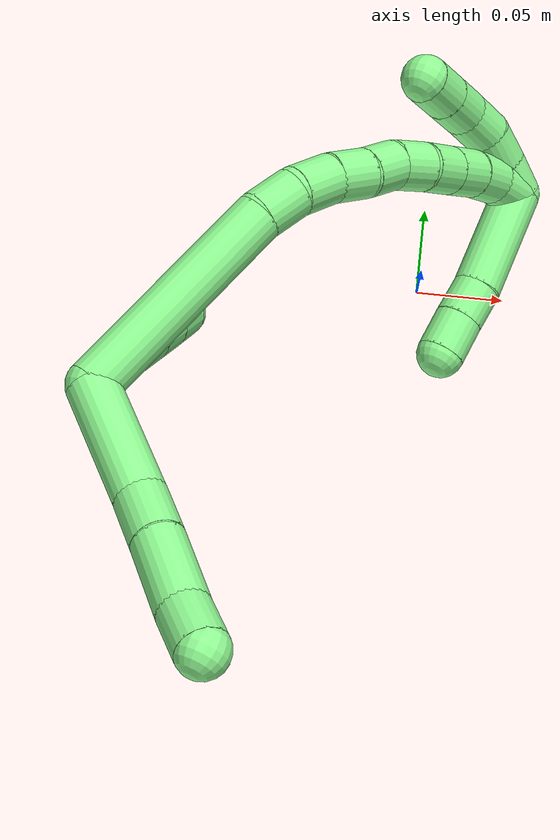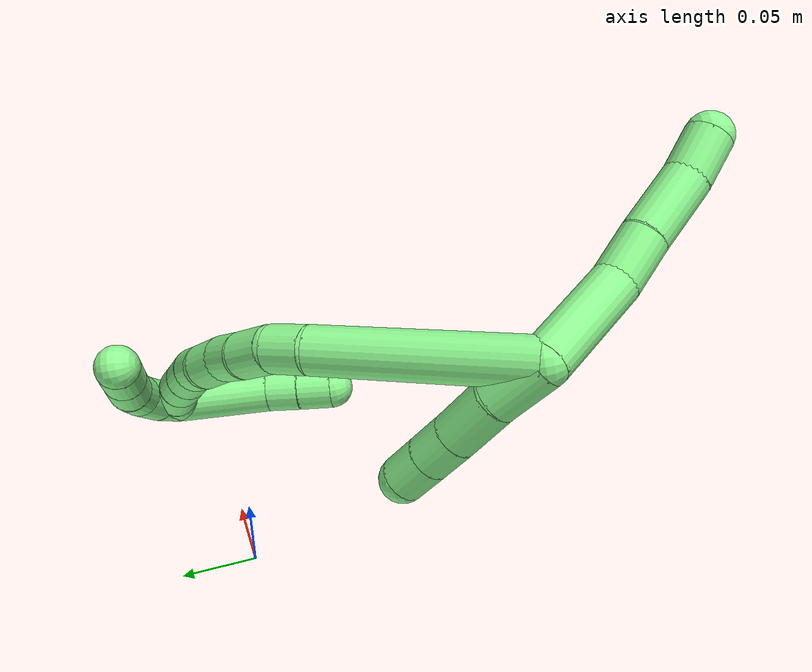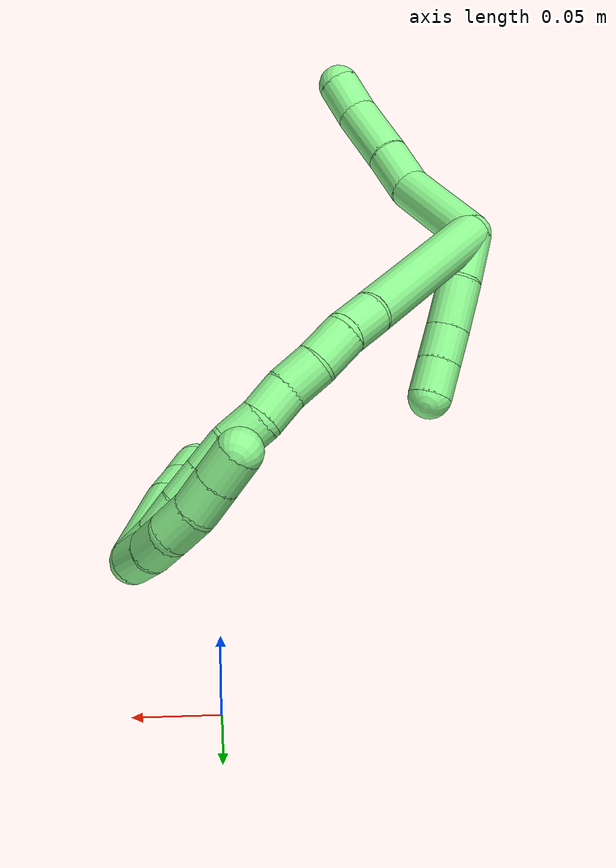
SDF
<sdf version="1.7">
 <world name="default">
  <model name="13">
   <static>0</static>
   <link name="13">
    <collision name="collision-cylinder-e_1_2_8">
     <pose>0.018288 0.013009 0.019645 -0.584907 0.660047 -0.205548</pose>
     <geometry><cylinder><radius>0.0125</radius><length>0.059653</length></cylinder></geometry>
     <surface>
      <friction><ode><mu>1.16</mu><mu2>1.16</mu2><slip1>0</slip1><slip2>0</slip2></ode></friction>
      <contact><ode><kp>1e+06</kp><kd>1</kd><max_vel>0</max_vel><min_depth>0.001</min_depth></ode></contact>
     </surface>
    </collision>
    <visual name="visual-cylinder-e_1_2_8">
     <pose>0.018288 0.013009 0.019645 -0.584907 0.660047 -0.205548</pose>
     <geometry><cylinder><radius>0.0125</radius><length>0.059653</length></cylinder></geometry>
     <material><ambient>0.564706 0.984314 0.572549 1</ambient></material>
    </visual>
    <collision name="collision-cylinder-e_2_8_9">
     <pose>0.041716 0.035107 0.048119 -0.799942 0.385343 -0.164581</pose>
     <geometry><cylinder><radius>0.0125</radius><length>0.027348</length></cylinder></geometry>
     <surface>
      <friction><ode><mu>1.16</mu><mu2>1.16</mu2><slip1>0</slip1><slip2>0</slip2></ode></friction>
      <contact><ode><kp>1e+06</kp><kd>1</kd><max_vel>0</max_vel><min_depth>0.001</min_depth></ode></contact>
     </surface>
    </collision>
    <visual name="visual-cylinder-e_2_8_9">
     <pose>0.041716 0.035107 0.048119 -0.799942 0.385343 -0.164581</pose>
     <geometry><cylinder><radius>0.0125</radius><length>0.027348</length></cylinder></geometry>
     <material><ambient>0.564706 0.984314 0.572549 1</ambient></material>
    </visual>
    <collision name="collision-cylinder-e_3_9_10">
     <pose>0.054881 0.055881 0.069779 -0.738622 0.433134 -0.169915</pose>
     <geometry><cylinder><radius>0.0125</radius><length>0.038241</length></cylinder></geometry>
     <surface>
      <friction><ode><mu>1.16</mu><mu2>1.16</mu2><slip1>0</slip1><slip2>0</slip2></ode></friction>
      <contact><ode><kp>1e+06</kp><kd>1</kd><max_vel>0</max_vel><min_depth>0.001</min_depth></ode></contact>
     </surface>
    </collision>
    <visual name="visual-cylinder-e_3_9_10">
     <pose>0.054881 0.055881 0.069779 -0.738622 0.433134 -0.169915</pose>
     <geometry><cylinder><radius>0.0125</radius><length>0.038241</length></cylinder></geometry>
     <material><ambient>0.564706 0.984314 0.572549 1</ambient></material>
    </visual>
    <collision name="collision-cylinder-e_4_10_6">
     <pose>0.066846 0.076706 0.089971 -0.892921 0.323926 -0.156115</pose>
     <geometry><cylinder><radius>0.0125</radius><length>0.024758</length></cylinder></geometry>
     <surface>
      <friction><ode><mu>1.16</mu><mu2>1.16</mu2><slip1>0</slip1><slip2>0</slip2></ode></friction>
      <contact><ode><kp>1e+06</kp><kd>1</kd><max_vel>0</max_vel><min_depth>0.001</min_depth></ode></contact>
     </surface>
    </collision>
    <visual name="visual-cylinder-e_4_10_6">
     <pose>0.066846 0.076706 0.089971 -0.892921 0.323926 -0.156115</pose>
     <geometry><cylinder><radius>0.0125</radius><length>0.024758</length></cylinder></geometry>
     <material><ambient>0.564706 0.984314 0.572549 1</ambient></material>
    </visual>
    <collision name="collision-cylinder-e_1_2_11">
     <pose>0.004418 -0.007477 -0.012273 2.59444 0.29828 0.983211</pose>
     <geometry><cylinder><radius>0.0125</radius><length>0.03007</length></cylinder></geometry>
     <surface>
      <friction><ode><mu>1.16</mu><mu2>1.16</mu2><slip1>0</slip1><slip2>0</slip2></ode></friction>
      <contact><ode><kp>1e+06</kp><kd>1</kd><max_vel>0</max_vel><min_depth>0.001</min_depth></ode></contact>
     </surface>
    </collision>
    <visual name="visual-cylinder-e_1_2_11">
     <pose>0.004418 -0.007477 -0.012273 2.59444 0.29828 0.983211</pose>
     <geometry><cylinder><radius>0.0125</radius><length>0.03007</length></cylinder></geometry>
     <material><ambient>0.564706 0.984314 0.572549 1</ambient></material>
    </visual>
    <collision name="collision-cylinder-e_2_11_12">
     <pose>0.014487 -0.023153 -0.035315 2.49087 0.395449 1.07179</pose>
     <geometry><cylinder><radius>0.0125</radius><length>0.029335</length></cylinder></geometry>
     <surface>
      <friction><ode><mu>1.16</mu><mu2>1.16</mu2><slip1>0</slip1><slip2>0</slip2></ode></friction>
      <contact><ode><kp>1e+06</kp><kd>1</kd><max_vel>0</max_vel><min_depth>0.001</min_depth></ode></contact>
     </surface>
    </collision>
    <visual name="visual-cylinder-e_2_11_12">
     <pose>0.014487 -0.023153 -0.035315 2.49087 0.395449 1.07179</pose>
     <geometry><cylinder><radius>0.0125</radius><length>0.029335</length></cylinder></geometry>
     <material><ambient>0.564706 0.984314 0.572549 1</ambient></material>
    </visual>
    <collision name="collision-cylinder-e_3_12_13">
     <pose>0.02404 -0.036752 -0.053646 2.52143 0.397639 1.12268</pose>
     <geometry><cylinder><radius>0.0125</radius><length>0.020155</length></cylinder></geometry>
     <surface>
      <friction><ode><mu>1.16</mu><mu2>1.16</mu2><slip1>0</slip1><slip2>0</slip2></ode></friction>
      <contact><ode><kp>1e+06</kp><kd>1</kd><max_vel>0</max_vel><min_depth>0.001</min_depth></ode></contact>
     </surface>
    </collision>
    <visual name="visual-cylinder-e_3_12_13">
     <pose>0.02404 -0.036752 -0.053646 2.52143 0.397639 1.12268</pose>
     <geometry><cylinder><radius>0.0125</radius><length>0.020155</length></cylinder></geometry>
     <material><ambient>0.564706 0.984314 0.572549 1</ambient></material>
    </visual>
    <collision name="collision-cylinder-e_4_13_5">
     <pose>0.031818 -0.047597 -0.068938 2.52795 0.388998 1.11253</pose>
     <geometry><cylinder><radius>0.0125</radius><length>0.02044</length></cylinder></geometry>
     <surface>
      <friction><ode><mu>1.16</mu><mu2>1.16</mu2><slip1>0</slip1><slip2>0</slip2></ode></friction>
      <contact><ode><kp>1e+06</kp><kd>1</kd><max_vel>0</max_vel><min_depth>0.001</min_depth></ode></contact>
     </surface>
    </collision>
    <visual name="visual-cylinder-e_4_13_5">
     <pose>0.031818 -0.047597 -0.068938 2.52795 0.388998 1.11253</pose>
     <geometry><cylinder><radius>0.0125</radius><length>0.02044</length></cylinder></geometry>
     <material><ambient>0.564706 0.984314 0.572549 1</ambient></material>
    </visual>
    <collision name="collision-cylinder-e_1_2_14">
     <pose>0.012104 0.009968 -0.05428 -2.95998 0.215902 -1.74401</pose>
     <geometry><cylinder><radius>0.0125</radius><length>0.112998</length></cylinder></geometry>
     <surface>
      <friction><ode><mu>1.16</mu><mu2>1.16</mu2><slip1>0</slip1><slip2>0</slip2></ode></friction>
      <contact><ode><kp>1e+06</kp><kd>1</kd><max_vel>0</max_vel><min_depth>0.001</min_depth></ode></contact>
     </surface>
    </collision>
    <visual name="visual-cylinder-e_1_2_14">
     <pose>0.012104 0.009968 -0.05428 -2.95998 0.215902 -1.74401</pose>
     <geometry><cylinder><radius>0.0125</radius><length>0.112998</length></cylinder></geometry>
     <material><ambient>0.564706 0.984314 0.572549 1</ambient></material>
    </visual>
    <collision name="collision-cylinder-e_2_14_15">
     <pose>0.028548 0.021271 -0.118586 -3.00915 0.405353 -2.51724</pose>
     <geometry><cylinder><radius>0.0125</radius><length>0.022015</length></cylinder></geometry>
     <surface>
      <friction><ode><mu>1.16</mu><mu2>1.16</mu2><slip1>0</slip1><slip2>0</slip2></ode></friction>
      <contact><ode><kp>1e+06</kp><kd>1</kd><max_vel>0</max_vel><min_depth>0.001</min_depth></ode></contact>
     </surface>
    </collision>
    <visual name="visual-cylinder-e_2_14_15">
     <pose>0.028548 0.021271 -0.118586 -3.00915 0.405353 -2.51724</pose>
     <geometry><cylinder><radius>0.0125</radius><length>0.022015</length></cylinder></geometry>
     <material><ambient>0.564706 0.984314 0.572549 1</ambient></material>
    </visual>
    <collision name="collision-cylinder-e_3_15_16">
     <pose>0.039535 0.021434 -0.13805 3.01792 0.609959 2.75318</pose>
     <geometry><cylinder><radius>0.0125</radius><length>0.023204</length></cylinder></geometry>
     <surface>
      <friction><ode><mu>1.16</mu><mu2>1.16</mu2><slip1>0</slip1><slip2>0</slip2></ode></friction>
      <contact><ode><kp>1e+06</kp><kd>1</kd><max_vel>0</max_vel><min_depth>0.001</min_depth></ode></contact>
     </surface>
    </collision>
    <visual name="visual-cylinder-e_3_15_16">
     <pose>0.039535 0.021434 -0.13805 3.01792 0.609959 2.75318</pose>
     <geometry><cylinder><radius>0.0125</radius><length>0.023204</length></cylinder></geometry>
     <material><ambient>0.564706 0.984314 0.572549 1</ambient></material>
    </visual>
    <collision name="collision-cylinder-e_4_16_17">
     <pose>0.053653 0.019477 -0.154891 3.03616 0.787216 2.88884</pose>
     <geometry><cylinder><radius>0.0125</radius><length>0.021096</length></cylinder></geometry>
     <surface>
      <friction><ode><mu>1.16</mu><mu2>1.16</mu2><slip1>0</slip1><slip2>0</slip2></ode></friction>
      <contact><ode><kp>1e+06</kp><kd>1</kd><max_vel>0</max_vel><min_depth>0.001</min_depth></ode></contact>
     </surface>
    </collision>
    <visual name="visual-cylinder-e_4_16_17">
     <pose>0.053653 0.019477 -0.154891 3.03616 0.787216 2.88884</pose>
     <geometry><cylinder><radius>0.0125</radius><length>0.021096</length></cylinder></geometry>
     <material><ambient>0.564706 0.984314 0.572549 1</ambient></material>
    </visual>
    <collision name="collision-cylinder-e_5_17_18">
     <pose>0.067268 0.016761 -0.170136 2.89988 0.650308 2.45003</pose>
     <geometry><cylinder><radius>0.0125</radius><length>0.020295</length></cylinder></geometry>
     <surface>
      <friction><ode><mu>1.16</mu><mu2>1.16</mu2><slip1>0</slip1><slip2>0</slip2></ode></friction>
      <contact><ode><kp>1e+06</kp><kd>1</kd><max_vel>0</max_vel><min_depth>0.001</min_depth></ode></contact>
     </surface>
    </collision>
    <visual name="visual-cylinder-e_5_17_18">
     <pose>0.067268 0.016761 -0.170136 2.89988 0.650308 2.45003</pose>
     <geometry><cylinder><radius>0.0125</radius><length>0.020295</length></cylinder></geometry>
     <material><ambient>0.564706 0.984314 0.572549 1</ambient></material>
    </visual>
    <collision name="collision-cylinder-e_6_18_19">
     <pose>0.081482 0.013495 -0.18384 2.91805 0.930526 2.70167</pose>
     <geometry><cylinder><radius>0.0125</radius><length>0.020127</length></cylinder></geometry>
     <surface>
      <friction><ode><mu>1.16</mu><mu2>1.16</mu2><slip1>0</slip1><slip2>0</slip2></ode></friction>
      <contact><ode><kp>1e+06</kp><kd>1</kd><max_vel>0</max_vel><min_depth>0.001</min_depth></ode></contact>
     </surface>
    </collision>
    <visual name="visual-cylinder-e_6_18_19">
     <pose>0.081482 0.013495 -0.18384 2.91805 0.930526 2.70167</pose>
     <geometry><cylinder><radius>0.0125</radius><length>0.020127</length></cylinder></geometry>
     <material><ambient>0.564706 0.984314 0.572549 1</ambient></material>
    </visual>
    <collision name="collision-cylinder-e_7_19_20">
     <pose>0.097247 0.008977 -0.195343 2.62752 0.87108 2.11324</pose>
     <geometry><cylinder><radius>0.0125</radius><length>0.020118</length></cylinder></geometry>
     <surface>
      <friction><ode><mu>1.16</mu><mu2>1.16</mu2><slip1>0</slip1><slip2>0</slip2></ode></friction>
      <contact><ode><kp>1e+06</kp><kd>1</kd><max_vel>0</max_vel><min_depth>0.001</min_depth></ode></contact>
     </surface>
    </collision>
    <visual name="visual-cylinder-e_7_19_20">
     <pose>0.097247 0.008977 -0.195343 2.62752 0.87108 2.11324</pose>
     <geometry><cylinder><radius>0.0125</radius><length>0.020118</length></cylinder></geometry>
     <material><ambient>0.564706 0.984314 0.572549 1</ambient></material>
    </visual>
    <collision name="collision-cylinder-e_8_20_21">
     <pose>0.112588 0.002588 -0.206678 2.62922 0.863641 2.10785</pose>
     <geometry><cylinder><radius>0.0125</radius><length>0.020113</length></cylinder></geometry>
     <surface>
      <friction><ode><mu>1.16</mu><mu2>1.16</mu2><slip1>0</slip1><slip2>0</slip2></ode></friction>
      <contact><ode><kp>1e+06</kp><kd>1</kd><max_vel>0</max_vel><min_depth>0.001</min_depth></ode></contact>
     </surface>
    </collision>
    <visual name="visual-cylinder-e_8_20_21">
     <pose>0.112588 0.002588 -0.206678 2.62922 0.863641 2.10785</pose>
     <geometry><cylinder><radius>0.0125</radius><length>0.020113</length></cylinder></geometry>
     <material><ambient>0.564706 0.984314 0.572549 1</ambient></material>
    </visual>
    <collision name="collision-cylinder-e_9_21_22">
     <pose>0.128161 -0.004354 -0.217187 2.48123 0.915291 1.9257</pose>
     <geometry><cylinder><radius>0.0125</radius><length>0.020002</length></cylinder></geometry>
     <surface>
      <friction><ode><mu>1.16</mu><mu2>1.16</mu2><slip1>0</slip1><slip2>0</slip2></ode></friction>
      <contact><ode><kp>1e+06</kp><kd>1</kd><max_vel>0</max_vel><min_depth>0.001</min_depth></ode></contact>
     </surface>
    </collision>
    <visual name="visual-cylinder-e_9_21_22">
     <pose>0.128161 -0.004354 -0.217187 2.48123 0.915291 1.9257</pose>
     <geometry><cylinder><radius>0.0125</radius><length>0.020002</length></cylinder></geometry>
     <material><ambient>0.564706 0.984314 0.572549 1</ambient></material>
    </visual>
    <collision name="collision-cylinder-e_10_22_1">
     <pose>0.145129 -0.011185 -0.225012 2.34294 1.12537 1.96223</pose>
     <geometry><cylinder><radius>0.0125</radius><length>0.020033</length></cylinder></geometry>
     <surface>
      <friction><ode><mu>1.16</mu><mu2>1.16</mu2><slip1>0</slip1><slip2>0</slip2></ode></friction>
      <contact><ode><kp>1e+06</kp><kd>1</kd><max_vel>0</max_vel><min_depth>0.001</min_depth></ode></contact>
     </surface>
    </collision>
    <visual name="visual-cylinder-e_10_22_1">
     <pose>0.145129 -0.011185 -0.225012 2.34294 1.12537 1.96223</pose>
     <geometry><cylinder><radius>0.0125</radius><length>0.020033</length></cylinder></geometry>
     <material><ambient>0.564706 0.984314 0.572549 1</ambient></material>
    </visual>
    <collision name="collision-cylinder-e_1_1_23">
     <pose>0.156573 -0.01592 -0.198797 0.05614 0.081972 0.002303</pose>
     <geometry><cylinder><radius>0.0125</radius><length>0.058741</length></cylinder></geometry>
     <surface>
      <friction><ode><mu>1.16</mu><mu2>1.16</mu2><slip1>0</slip1><slip2>0</slip2></ode></friction>
      <contact><ode><kp>1e+06</kp><kd>1</kd><max_vel>0</max_vel><min_depth>0.001</min_depth></ode></contact>
     </surface>
    </collision>
    <visual name="visual-cylinder-e_1_1_23">
     <pose>0.156573 -0.01592 -0.198797 0.05614 0.081972 0.002303</pose>
     <geometry><cylinder><radius>0.0125</radius><length>0.058741</length></cylinder></geometry>
     <material><ambient>0.564706 0.984314 0.572549 1</ambient></material>
    </visual>
    <collision name="collision-cylinder-e_2_23_24">
     <pose>0.158717 -0.018602 -0.159512 0.10299 -0.02576 -0.001328</pose>
     <geometry><cylinder><radius>0.0125</radius><length>0.020232</length></cylinder></geometry>
     <surface>
      <friction><ode><mu>1.16</mu><mu2>1.16</mu2><slip1>0</slip1><slip2>0</slip2></ode></friction>
      <contact><ode><kp>1e+06</kp><kd>1</kd><max_vel>0</max_vel><min_depth>0.001</min_depth></ode></contact>
     </surface>
    </collision>
    <visual name="visual-cylinder-e_2_23_24">
     <pose>0.158717 -0.018602 -0.159512 0.10299 -0.02576 -0.001328</pose>
     <geometry><cylinder><radius>0.0125</radius><length>0.020232</length></cylinder></geometry>
     <material><ambient>0.564706 0.984314 0.572549 1</ambient></material>
    </visual>
    <collision name="collision-cylinder-e_3_24_4">
     <pose>0.158542 -0.020631 -0.138987 0.094257 0.008097 0.000382</pose>
     <geometry><cylinder><radius>0.0125</radius><length>0.021026</length></cylinder></geometry>
     <surface>
      <friction><ode><mu>1.16</mu><mu2>1.16</mu2><slip1>0</slip1><slip2>0</slip2></ode></friction>
      <contact><ode><kp>1e+06</kp><kd>1</kd><max_vel>0</max_vel><min_depth>0.001</min_depth></ode></contact>
     </surface>
    </collision>
    <visual name="visual-cylinder-e_3_24_4">
     <pose>0.158542 -0.020631 -0.138987 0.094257 0.008097 0.000382</pose>
     <geometry><cylinder><radius>0.0125</radius><length>0.021026</length></cylinder></geometry>
     <material><ambient>0.564706 0.984314 0.572549 1</ambient></material>
    </visual>
    <collision name="collision-cylinder-e_1_1_25">
     <pose>0.14503 -0.01144 -0.23093 -2.36829 -1.15258 2.02224</pose>
     <geometry><cylinder><radius>0.0125</radius><length>0.02</length></cylinder></geometry>
     <surface>
      <friction><ode><mu>1.16</mu><mu2>1.16</mu2><slip1>0</slip1><slip2>0</slip2></ode></friction>
      <contact><ode><kp>1e+06</kp><kd>1</kd><max_vel>0</max_vel><min_depth>0.001</min_depth></ode></contact>
     </surface>
    </collision>
    <visual name="visual-cylinder-e_1_1_25">
     <pose>0.14503 -0.01144 -0.23093 -2.36829 -1.15258 2.02224</pose>
     <geometry><cylinder><radius>0.0125</radius><length>0.02</length></cylinder></geometry>
     <material><ambient>0.564706 0.984314 0.572549 1</ambient></material>
    </visual>
    <collision name="collision-cylinder-e_2_25_26">
     <pose>0.126752 -0.00491 -0.235514 -1.99731 -1.15304 1.58041</pose>
     <geometry><cylinder><radius>0.0125</radius><length>0.02</length></cylinder></geometry>
     <surface>
      <friction><ode><mu>1.16</mu><mu2>1.16</mu2><slip1>0</slip1><slip2>0</slip2></ode></friction>
      <contact><ode><kp>1e+06</kp><kd>1</kd><max_vel>0</max_vel><min_depth>0.001</min_depth></ode></contact>
     </surface>
    </collision>
    <visual name="visual-cylinder-e_2_25_26">
     <pose>0.126752 -0.00491 -0.235514 -1.99731 -1.15304 1.58041</pose>
     <geometry><cylinder><radius>0.0125</radius><length>0.02</length></cylinder></geometry>
     <material><ambient>0.564706 0.984314 0.572549 1</ambient></material>
    </visual>
    <collision name="collision-cylinder-e_3_26_27">
     <pose>0.108234 0.001957 -0.235779 -1.15177 -1.21602 0.848847</pose>
     <geometry><cylinder><radius>0.0125</radius><length>0.02</length></cylinder></geometry>
     <surface>
      <friction><ode><mu>1.16</mu><mu2>1.16</mu2><slip1>0</slip1><slip2>0</slip2></ode></friction>
      <contact><ode><kp>1e+06</kp><kd>1</kd><max_vel>0</max_vel><min_depth>0.001</min_depth></ode></contact>
     </surface>
    </collision>
    <visual name="visual-cylinder-e_3_26_27">
     <pose>0.108234 0.001957 -0.235779 -1.15177 -1.21602 0.848847</pose>
     <geometry><cylinder><radius>0.0125</radius><length>0.02</length></cylinder></geometry>
     <material><ambient>0.564706 0.984314 0.572549 1</ambient></material>
    </visual>
    <collision name="collision-cylinder-e_4_27_28">
     <pose>0.09034 0.009626 -0.231674 -1.03122 -1.0192 0.613439</pose>
     <geometry><cylinder><radius>0.0125</radius><length>0.02</length></cylinder></geometry>
     <surface>
      <friction><ode><mu>1.16</mu><mu2>1.16</mu2><slip1>0</slip1><slip2>0</slip2></ode></friction>
      <contact><ode><kp>1e+06</kp><kd>1</kd><max_vel>0</max_vel><min_depth>0.001</min_depth></ode></contact>
     </surface>
    </collision>
    <visual name="visual-cylinder-e_4_27_28">
     <pose>0.09034 0.009626 -0.231674 -1.03122 -1.0192 0.613439</pose>
     <geometry><cylinder><radius>0.0125</radius><length>0.02</length></cylinder></geometry>
     <material><ambient>0.564706 0.984314 0.572549 1</ambient></material>
    </visual>
    <collision name="collision-cylinder-e_5_28_3">
     <pose>0.073303 0.018606 -0.22628 -1.02857 -1.01985 0.612103</pose>
     <geometry><cylinder><radius>0.0125</radius><length>0.02</length></cylinder></geometry>
     <surface>
      <friction><ode><mu>1.16</mu><mu2>1.16</mu2><slip1>0</slip1><slip2>0</slip2></ode></friction>
      <contact><ode><kp>1e+06</kp><kd>1</kd><max_vel>0</max_vel><min_depth>0.001</min_depth></ode></contact>
     </surface>
    </collision>
    <visual name="visual-cylinder-e_5_28_3">
     <pose>0.073303 0.018606 -0.22628 -1.02857 -1.01985 0.612103</pose>
     <geometry><cylinder><radius>0.0125</radius><length>0.02</length></cylinder></geometry>
     <material><ambient>0.564706 0.984314 0.572549 1</ambient></material>
    </visual>
    <collision name="collision-sphere-3">
     <pose>0.064783 0.02309 -0.223578 0 -0 0</pose>
     <geometry><sphere><radius>0.0125</radius></sphere></geometry>
     <surface>
      <friction><ode><mu>1.16</mu><mu2>1.16</mu2><slip1>0</slip1><slip2>0</slip2></ode></friction>
      <contact><ode><kp>1e+06</kp><kd>1</kd><max_vel>0</max_vel><min_depth>0.001</min_depth></ode></contact>
     </surface>
    </collision>
    <visual name="visual-sphere-3">
     <pose>0.064783 0.02309 -0.223578 0 -0 0</pose>
     <geometry><sphere><radius>0.0125</radius></sphere></geometry>
     <material><ambient>0.564706 0.984314 0.572549 1</ambient></material>
    </visual>
    <collision name="collision-sphere-28">
     <pose>0.081823 0.014122 -0.228981 0 -0 0</pose>
     <geometry><sphere><radius>0.0125</radius></sphere></geometry>
     <surface>
      <friction><ode><mu>1.16</mu><mu2>1.16</mu2><slip1>0</slip1><slip2>0</slip2></ode></friction>
      <contact><ode><kp>1e+06</kp><kd>1</kd><max_vel>0</max_vel><min_depth>0.001</min_depth></ode></contact>
     </surface>
    </collision>
    <visual name="visual-sphere-28">
     <pose>0.081823 0.014122 -0.228981 0 -0 0</pose>
     <geometry><sphere><radius>0.0125</radius></sphere></geometry>
     <material><ambient>0.564706 0.984314 0.572549 1</ambient></material>
    </visual>
    <collision name="collision-sphere-27">
     <pose>0.098857 0.00513 -0.234366 0 -0 0</pose>
     <geometry><sphere><radius>0.0125</radius></sphere></geometry>
     <surface>
      <friction><ode><mu>1.16</mu><mu2>1.16</mu2><slip1>0</slip1><slip2>0</slip2></ode></friction>
      <contact><ode><kp>1e+06</kp><kd>1</kd><max_vel>0</max_vel><min_depth>0.001</min_depth></ode></contact>
     </surface>
    </collision>
    <visual name="visual-sphere-27">
     <pose>0.098857 0.00513 -0.234366 0 -0 0</pose>
     <geometry><sphere><radius>0.0125</radius></sphere></geometry>
     <material><ambient>0.564706 0.984314 0.572549 1</ambient></material>
    </visual>
    <collision name="collision-sphere-26">
     <pose>0.117612 -0.001216 -0.237193 0 -0 0</pose>
     <geometry><sphere><radius>0.0125</radius></sphere></geometry>
     <surface>
      <friction><ode><mu>1.16</mu><mu2>1.16</mu2><slip1>0</slip1><slip2>0</slip2></ode></friction>
      <contact><ode><kp>1e+06</kp><kd>1</kd><max_vel>0</max_vel><min_depth>0.001</min_depth></ode></contact>
     </surface>
    </collision>
    <visual name="visual-sphere-26">
     <pose>0.117612 -0.001216 -0.237193 0 -0 0</pose>
     <geometry><sphere><radius>0.0125</radius></sphere></geometry>
     <material><ambient>0.564706 0.984314 0.572549 1</ambient></material>
    </visual>
    <collision name="collision-sphere-25">
     <pose>0.135892 -0.008604 -0.233836 0 -0 0</pose>
     <geometry><sphere><radius>0.0125</radius></sphere></geometry>
     <surface>
      <friction><ode><mu>1.16</mu><mu2>1.16</mu2><slip1>0</slip1><slip2>0</slip2></ode></friction>
      <contact><ode><kp>1e+06</kp><kd>1</kd><max_vel>0</max_vel><min_depth>0.001</min_depth></ode></contact>
     </surface>
    </collision>
    <visual name="visual-sphere-25">
     <pose>0.135892 -0.008604 -0.233836 0 -0 0</pose>
     <geometry><sphere><radius>0.0125</radius></sphere></geometry>
     <material><ambient>0.564706 0.984314 0.572549 1</ambient></material>
    </visual>
    <collision name="collision-sphere-4">
     <pose>0.158627 -0.02162 -0.128521 0 -0 0</pose>
     <geometry><sphere><radius>0.0125</radius></sphere></geometry>
     <surface>
      <friction><ode><mu>1.16</mu><mu2>1.16</mu2><slip1>0</slip1><slip2>0</slip2></ode></friction>
      <contact><ode><kp>1e+06</kp><kd>1</kd><max_vel>0</max_vel><min_depth>0.001</min_depth></ode></contact>
     </surface>
    </collision>
    <visual name="visual-sphere-4">
     <pose>0.158627 -0.02162 -0.128521 0 -0 0</pose>
     <geometry><sphere><radius>0.0125</radius></sphere></geometry>
     <material><ambient>0.564706 0.984314 0.572549 1</ambient></material>
    </visual>
    <collision name="collision-sphere-24">
     <pose>0.158457 -0.019642 -0.149453 0 -0 0</pose>
     <geometry><sphere><radius>0.0125</radius></sphere></geometry>
     <surface>
      <friction><ode><mu>1.16</mu><mu2>1.16</mu2><slip1>0</slip1><slip2>0</slip2></ode></friction>
      <contact><ode><kp>1e+06</kp><kd>1</kd><max_vel>0</max_vel><min_depth>0.001</min_depth></ode></contact>
     </surface>
    </collision>
    <visual name="visual-sphere-24">
     <pose>0.158457 -0.019642 -0.149453 0 -0 0</pose>
     <geometry><sphere><radius>0.0125</radius></sphere></geometry>
     <material><ambient>0.564706 0.984314 0.572549 1</ambient></material>
    </visual>
    <collision name="collision-sphere-23">
     <pose>0.158978 -0.017562 -0.169571 0 -0 0</pose>
     <geometry><sphere><radius>0.0125</radius></sphere></geometry>
     <surface>
      <friction><ode><mu>1.16</mu><mu2>1.16</mu2><slip1>0</slip1><slip2>0</slip2></ode></friction>
      <contact><ode><kp>1e+06</kp><kd>1</kd><max_vel>0</max_vel><min_depth>0.001</min_depth></ode></contact>
     </surface>
    </collision>
    <visual name="visual-sphere-23">
     <pose>0.158978 -0.017562 -0.169571 0 -0 0</pose>
     <geometry><sphere><radius>0.0125</radius></sphere></geometry>
     <material><ambient>0.564706 0.984314 0.572549 1</ambient></material>
    </visual>
    <collision name="collision-sphere-1">
     <pose>0.154168 -0.014277 -0.228023 0 -0 0</pose>
     <geometry><sphere><radius>0.0125</radius></sphere></geometry>
     <surface>
      <friction><ode><mu>1.16</mu><mu2>1.16</mu2><slip1>0</slip1><slip2>0</slip2></ode></friction>
      <contact><ode><kp>1e+06</kp><kd>1</kd><max_vel>0</max_vel><min_depth>0.001</min_depth></ode></contact>
     </surface>
    </collision>
    <visual name="visual-sphere-1">
     <pose>0.154168 -0.014277 -0.228023 0 -0 0</pose>
     <geometry><sphere><radius>0.0125</radius></sphere></geometry>
     <material><ambient>0.564706 0.984314 0.572549 1</ambient></material>
    </visual>
    <collision name="collision-sphere-22">
     <pose>0.136089 -0.008094 -0.222002 0 -0 0</pose>
     <geometry><sphere><radius>0.0125</radius></sphere></geometry>
     <surface>
      <friction><ode><mu>1.16</mu><mu2>1.16</mu2><slip1>0</slip1><slip2>0</slip2></ode></friction>
      <contact><ode><kp>1e+06</kp><kd>1</kd><max_vel>0</max_vel><min_depth>0.001</min_depth></ode></contact>
     </surface>
    </collision>
    <visual name="visual-sphere-22">
     <pose>0.136089 -0.008094 -0.222002 0 -0 0</pose>
     <geometry><sphere><radius>0.0125</radius></sphere></geometry>
     <material><ambient>0.564706 0.984314 0.572549 1</ambient></material>
    </visual>
    <collision name="collision-sphere-21">
     <pose>0.120233 -0.000615 -0.212372 0 -0 0</pose>
     <geometry><sphere><radius>0.0125</radius></sphere></geometry>
     <surface>
      <friction><ode><mu>1.16</mu><mu2>1.16</mu2><slip1>0</slip1><slip2>0</slip2></ode></friction>
      <contact><ode><kp>1e+06</kp><kd>1</kd><max_vel>0</max_vel><min_depth>0.001</min_depth></ode></contact>
     </surface>
    </collision>
    <visual name="visual-sphere-21">
     <pose>0.120233 -0.000615 -0.212372 0 -0 0</pose>
     <geometry><sphere><radius>0.0125</radius></sphere></geometry>
     <material><ambient>0.564706 0.984314 0.572549 1</ambient></material>
    </visual>
    <collision name="collision-sphere-11">
     <pose>0.008837 -0.014953 -0.024546 0 -0 0</pose>
     <geometry><sphere><radius>0.0125</radius></sphere></geometry>
     <surface>
      <friction><ode><mu>1.16</mu><mu2>1.16</mu2><slip1>0</slip1><slip2>0</slip2></ode></friction>
      <contact><ode><kp>1e+06</kp><kd>1</kd><max_vel>0</max_vel><min_depth>0.001</min_depth></ode></contact>
     </surface>
    </collision>
    <visual name="visual-sphere-11">
     <pose>0.008837 -0.014953 -0.024546 0 -0 0</pose>
     <geometry><sphere><radius>0.0125</radius></sphere></geometry>
     <material><ambient>0.564706 0.984314 0.572549 1</ambient></material>
    </visual>
    <collision name="collision-sphere-6">
     <pose>0.070787 0.085847 0.097331 0 -0 0</pose>
     <geometry><sphere><radius>0.0125</radius></sphere></geometry>
     <surface>
      <friction><ode><mu>1.16</mu><mu2>1.16</mu2><slip1>0</slip1><slip2>0</slip2></ode></friction>
      <contact><ode><kp>1e+06</kp><kd>1</kd><max_vel>0</max_vel><min_depth>0.001</min_depth></ode></contact>
     </surface>
    </collision>
    <visual name="visual-sphere-6">
     <pose>0.070787 0.085847 0.097331 0 -0 0</pose>
     <geometry><sphere><radius>0.0125</radius></sphere></geometry>
     <material><ambient>0.564706 0.984314 0.572549 1</ambient></material>
    </visual>
    <collision name="collision-sphere-10">
     <pose>0.062906 0.067565 0.082611 0 -0 0</pose>
     <geometry><sphere><radius>0.0125</radius></sphere></geometry>
     <surface>
      <friction><ode><mu>1.16</mu><mu2>1.16</mu2><slip1>0</slip1><slip2>0</slip2></ode></friction>
      <contact><ode><kp>1e+06</kp><kd>1</kd><max_vel>0</max_vel><min_depth>0.001</min_depth></ode></contact>
     </surface>
    </collision>
    <visual name="visual-sphere-10">
     <pose>0.062906 0.067565 0.082611 0 -0 0</pose>
     <geometry><sphere><radius>0.0125</radius></sphere></geometry>
     <material><ambient>0.564706 0.984314 0.572549 1</ambient></material>
    </visual>
    <collision name="collision-sphere-9">
     <pose>0.046856 0.044197 0.056947 0 -0 0</pose>
     <geometry><sphere><radius>0.0125</radius></sphere></geometry>
     <surface>
      <friction><ode><mu>1.16</mu><mu2>1.16</mu2><slip1>0</slip1><slip2>0</slip2></ode></friction>
      <contact><ode><kp>1e+06</kp><kd>1</kd><max_vel>0</max_vel><min_depth>0.001</min_depth></ode></contact>
     </surface>
    </collision>
    <visual name="visual-sphere-9">
     <pose>0.046856 0.044197 0.056947 0 -0 0</pose>
     <geometry><sphere><radius>0.0125</radius></sphere></geometry>
     <material><ambient>0.564706 0.984314 0.572549 1</ambient></material>
    </visual>
    <collision name="collision-sphere-2">
     <geometry><sphere><radius>0.0125</radius></sphere></geometry>
     <surface>
      <friction><ode><mu>1.16</mu><mu2>1.16</mu2><slip1>0</slip1><slip2>0</slip2></ode></friction>
      <contact><ode><kp>1e+06</kp><kd>1</kd><max_vel>0</max_vel><min_depth>0.001</min_depth></ode></contact>
     </surface>
    </collision>
    <visual name="visual-sphere-2">
     <geometry><sphere><radius>0.0125</radius></sphere></geometry>
     <material><ambient>0.564706 0.984314 0.572549 1</ambient></material>
    </visual>
    <collision name="collision-sphere-19">
     <pose>0.089552 0.012162 -0.189702 0 -0 0</pose>
     <geometry><sphere><radius>0.0125</radius></sphere></geometry>
     <surface>
      <friction><ode><mu>1.16</mu><mu2>1.16</mu2><slip1>0</slip1><slip2>0</slip2></ode></friction>
      <contact><ode><kp>1e+06</kp><kd>1</kd><max_vel>0</max_vel><min_depth>0.001</min_depth></ode></contact>
     </surface>
    </collision>
    <visual name="visual-sphere-19">
     <pose>0.089552 0.012162 -0.189702 0 -0 0</pose>
     <geometry><sphere><radius>0.0125</radius></sphere></geometry>
     <material><ambient>0.564706 0.984314 0.572549 1</ambient></material>
    </visual>
    <collision name="collision-sphere-8">
     <pose>0.036577 0.026018 0.03929 0 -0 0</pose>
     <geometry><sphere><radius>0.0125</radius></sphere></geometry>
     <surface>
      <friction><ode><mu>1.16</mu><mu2>1.16</mu2><slip1>0</slip1><slip2>0</slip2></ode></friction>
      <contact><ode><kp>1e+06</kp><kd>1</kd><max_vel>0</max_vel><min_depth>0.001</min_depth></ode></contact>
     </surface>
    </collision>
    <visual name="visual-sphere-8">
     <pose>0.036577 0.026018 0.03929 0 -0 0</pose>
     <geometry><sphere><radius>0.0125</radius></sphere></geometry>
     <material><ambient>0.564706 0.984314 0.572549 1</ambient></material>
    </visual>
    <collision name="collision-sphere-12">
     <pose>0.020137 -0.031352 -0.046085 0 -0 0</pose>
     <geometry><sphere><radius>0.0125</radius></sphere></geometry>
     <surface>
      <friction><ode><mu>1.16</mu><mu2>1.16</mu2><slip1>0</slip1><slip2>0</slip2></ode></friction>
      <contact><ode><kp>1e+06</kp><kd>1</kd><max_vel>0</max_vel><min_depth>0.001</min_depth></ode></contact>
     </surface>
    </collision>
    <visual name="visual-sphere-12">
     <pose>0.020137 -0.031352 -0.046085 0 -0 0</pose>
     <geometry><sphere><radius>0.0125</radius></sphere></geometry>
     <material><ambient>0.564706 0.984314 0.572549 1</ambient></material>
    </visual>
    <collision name="collision-sphere-13">
     <pose>0.027942 -0.042152 -0.061207 0 -0 0</pose>
     <geometry><sphere><radius>0.0125</radius></sphere></geometry>
     <surface>
      <friction><ode><mu>1.16</mu><mu2>1.16</mu2><slip1>0</slip1><slip2>0</slip2></ode></friction>
      <contact><ode><kp>1e+06</kp><kd>1</kd><max_vel>0</max_vel><min_depth>0.001</min_depth></ode></contact>
     </surface>
    </collision>
    <visual name="visual-sphere-13">
     <pose>0.027942 -0.042152 -0.061207 0 -0 0</pose>
     <geometry><sphere><radius>0.0125</radius></sphere></geometry>
     <material><ambient>0.564706 0.984314 0.572549 1</ambient></material>
    </visual>
    <collision name="collision-sphere-5">
     <pose>0.035694 -0.053043 -0.076669 0 -0 0</pose>
     <geometry><sphere><radius>0.0125</radius></sphere></geometry>
     <surface>
      <friction><ode><mu>1.16</mu><mu2>1.16</mu2><slip1>0</slip1><slip2>0</slip2></ode></friction>
      <contact><ode><kp>1e+06</kp><kd>1</kd><max_vel>0</max_vel><min_depth>0.001</min_depth></ode></contact>
     </surface>
    </collision>
    <visual name="visual-sphere-5">
     <pose>0.035694 -0.053043 -0.076669 0 -0 0</pose>
     <geometry><sphere><radius>0.0125</radius></sphere></geometry>
     <material><ambient>0.564706 0.984314 0.572549 1</ambient></material>
    </visual>
    <collision name="collision-sphere-14">
     <pose>0.024207 0.019935 -0.108559 0 -0 0</pose>
     <geometry><sphere><radius>0.0125</radius></sphere></geometry>
     <surface>
      <friction><ode><mu>1.16</mu><mu2>1.16</mu2><slip1>0</slip1><slip2>0</slip2></ode></friction>
      <contact><ode><kp>1e+06</kp><kd>1</kd><max_vel>0</max_vel><min_depth>0.001</min_depth></ode></contact>
     </surface>
    </collision>
    <visual name="visual-sphere-14">
     <pose>0.024207 0.019935 -0.108559 0 -0 0</pose>
     <geometry><sphere><radius>0.0125</radius></sphere></geometry>
     <material><ambient>0.564706 0.984314 0.572549 1</ambient></material>
    </visual>
    <collision name="collision-sphere-15">
     <pose>0.032889 0.022607 -0.128613 0 -0 0</pose>
     <geometry><sphere><radius>0.0125</radius></sphere></geometry>
     <surface>
      <friction><ode><mu>1.16</mu><mu2>1.16</mu2><slip1>0</slip1><slip2>0</slip2></ode></friction>
      <contact><ode><kp>1e+06</kp><kd>1</kd><max_vel>0</max_vel><min_depth>0.001</min_depth></ode></contact>
     </surface>
    </collision>
    <visual name="visual-sphere-15">
     <pose>0.032889 0.022607 -0.128613 0 -0 0</pose>
     <geometry><sphere><radius>0.0125</radius></sphere></geometry>
     <material><ambient>0.564706 0.984314 0.572549 1</ambient></material>
    </visual>
    <collision name="collision-sphere-16">
     <pose>0.046181 0.020261 -0.147487 0 -0 0</pose>
     <geometry><sphere><radius>0.0125</radius></sphere></geometry>
     <surface>
      <friction><ode><mu>1.16</mu><mu2>1.16</mu2><slip1>0</slip1><slip2>0</slip2></ode></friction>
      <contact><ode><kp>1e+06</kp><kd>1</kd><max_vel>0</max_vel><min_depth>0.001</min_depth></ode></contact>
     </surface>
    </collision>
    <visual name="visual-sphere-16">
     <pose>0.046181 0.020261 -0.147487 0 -0 0</pose>
     <geometry><sphere><radius>0.0125</radius></sphere></geometry>
     <material><ambient>0.564706 0.984314 0.572549 1</ambient></material>
    </visual>
    <collision name="collision-sphere-17">
     <pose>0.061125 0.018694 -0.162294 0 -0 0</pose>
     <geometry><sphere><radius>0.0125</radius></sphere></geometry>
     <surface>
      <friction><ode><mu>1.16</mu><mu2>1.16</mu2><slip1>0</slip1><slip2>0</slip2></ode></friction>
      <contact><ode><kp>1e+06</kp><kd>1</kd><max_vel>0</max_vel><min_depth>0.001</min_depth></ode></contact>
     </surface>
    </collision>
    <visual name="visual-sphere-17">
     <pose>0.061125 0.018694 -0.162294 0 -0 0</pose>
     <geometry><sphere><radius>0.0125</radius></sphere></geometry>
     <material><ambient>0.564706 0.984314 0.572549 1</ambient></material>
    </visual>
    <collision name="collision-sphere-18">
     <pose>0.073412 0.014828 -0.177977 0 -0 0</pose>
     <geometry><sphere><radius>0.0125</radius></sphere></geometry>
     <surface>
      <friction><ode><mu>1.16</mu><mu2>1.16</mu2><slip1>0</slip1><slip2>0</slip2></ode></friction>
      <contact><ode><kp>1e+06</kp><kd>1</kd><max_vel>0</max_vel><min_depth>0.001</min_depth></ode></contact>
     </surface>
    </collision>
    <visual name="visual-sphere-18">
     <pose>0.073412 0.014828 -0.177977 0 -0 0</pose>
     <geometry><sphere><radius>0.0125</radius></sphere></geometry>
     <material><ambient>0.564706 0.984314 0.572549 1</ambient></material>
    </visual>
    <collision name="collision-sphere-20">
     <pose>0.104943 0.005791 -0.200983 0 -0 0</pose>
     <geometry><sphere><radius>0.0125</radius></sphere></geometry>
     <surface>
      <friction><ode><mu>1.16</mu><mu2>1.16</mu2><slip1>0</slip1><slip2>0</slip2></ode></friction>
      <contact><ode><kp>1e+06</kp><kd>1</kd><max_vel>0</max_vel><min_depth>0.001</min_depth></ode></contact>
     </surface>
    </collision>
    <visual name="visual-sphere-20">
     <pose>0.104943 0.005791 -0.200983 0 -0 0</pose>
     <geometry><sphere><radius>0.0125</radius></sphere></geometry>
     <material><ambient>0.564706 0.984314 0.572549 1</ambient></material>
    </visual>
    <inertial>
     <pose>0.068048 0.006296 -0.102465 0 -0 0</pose>
     <mass>0.75</mass>
     <inertia>
      <ixx>-7.1e-05</ixx>
      <ixy>0</ixy>
      <ixz>0</ixz>
      <iyy>-1.6e-05</iyy>
      <iyz>0</iyz>
      <izz>-9.1e-05</izz>
     </inertia>
    </inertial>
   </link>
   <pose>-0.147908 -0.119624 0.240708 1.33753 0.463238 -0.448113</pose>
  </model>
 </world>
</sdf>
